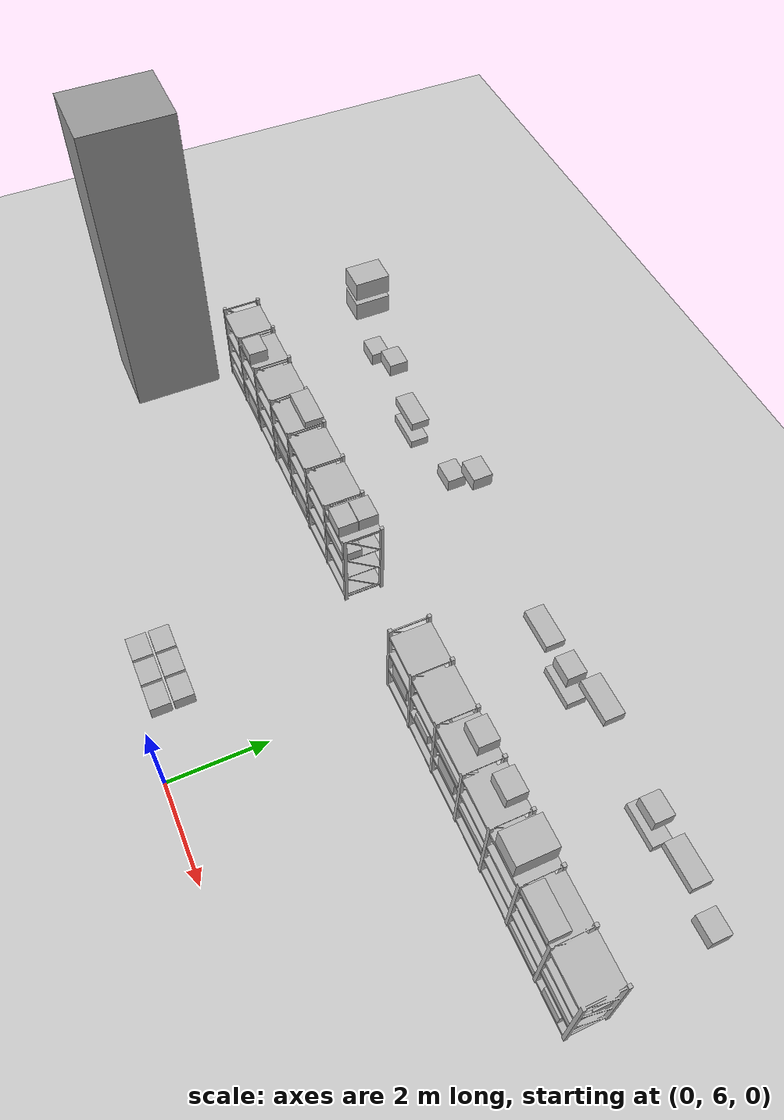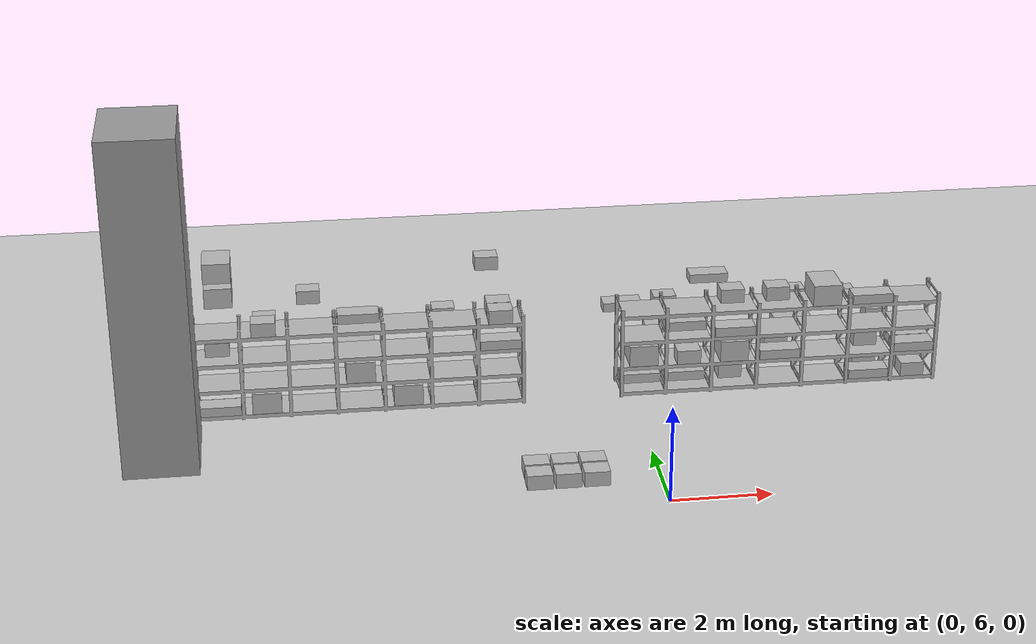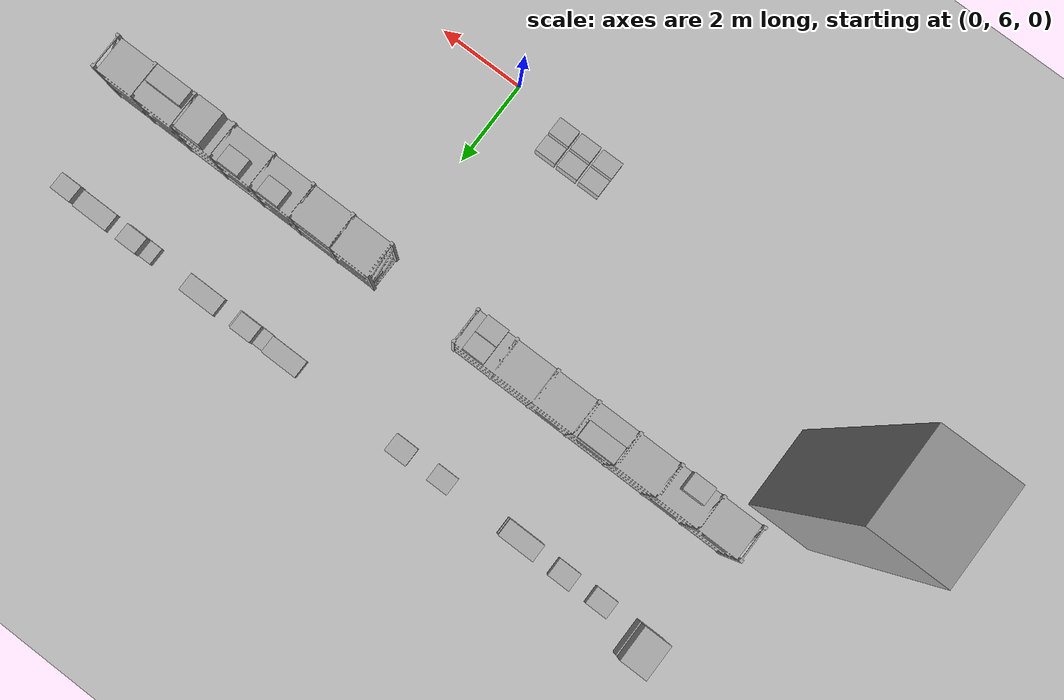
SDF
<sdf version="1.6">
 <world name="default">
  <model name="ground_plane">
   <static>1</static>
   <link name="link">
    <collision name="collision">
     <geometry><plane><normal>0 0 1</normal><size>100 100</size></plane></geometry>
     <surface><friction><ode><mu>100</mu><mu2>50</mu2></ode></friction></surface>
    </collision>
    <visual name="visual">
     <cast_shadows>0</cast_shadows>
     <geometry><plane><normal>0 0 1</normal><size>100 100</size></plane></geometry>
     <material>
      <script><uri>file://media/materials/scripts/gazebo.material</uri><name>Gazebo/Grey</name></script>
     </material>
    </visual>
   </link>
  </model>
  <model name="box_A_148">
   <pose>-2.4882 6.3711 0.4792 0 0 1.5708</pose>
   <link name="link">
    <inertial>
     <mass>2.0</mass>
     <inertia><ixx>0.05667</ixx><iyy>0.04167</iyy><izz>0.06833</izz><ixy>0</ixy><ixz>0</ixz><iyz>0</iyz></inertia>
    </inertial>
    <collision name="collision">
     <geometry><box><size>0.4 0.5 0.3</size></box></geometry>
     <surface><friction><ode><mu>1.0</mu><mu2>1.0</mu2></ode></friction></surface>
    </collision>
    <visual name="visual">
     <cast_shadows>0</cast_shadows>
     <geometry><box><size>0.4 0.5 0.3</size></box></geometry>
     <material>
      <script>
       <uri>model://labeled_boxes/materials/scripts</uri>
       <uri>model://labeled_boxes/materials/textures</uri>
       <name>LabeledBox/A-148</name>
      </script>
     </material>
    </visual>
   </link>
  </model>
  <model name="box_A_149">
   <pose>-2.4882 6.8211 0.4792 0 0 1.5708</pose>
   <link name="link">
    <inertial>
     <mass>2.0</mass>
     <inertia><ixx>0.05667</ixx><iyy>0.04167</iyy><izz>0.06833</izz><ixy>0</ixy><ixz>0</ixz><iyz>0</iyz></inertia>
    </inertial>
    <collision name="collision">
     <geometry><box><size>0.4 0.5 0.3</size></box></geometry>
     <surface><friction><ode><mu>1.0</mu><mu2>1.0</mu2></ode></friction></surface>
    </collision>
    <visual name="visual">
     <cast_shadows>0</cast_shadows>
     <geometry><box><size>0.4 0.5 0.3</size></box></geometry>
     <material>
      <script>
       <uri>model://labeled_boxes/materials/scripts</uri>
       <uri>model://labeled_boxes/materials/textures</uri>
       <name>LabeledBox/A-149</name>
      </script>
     </material>
    </visual>
   </link>
  </model>
  <model name="box_A_151">
   <pose>-1.9382 6.3711 0.4792 0 0 1.5708</pose>
   <link name="link">
    <inertial>
     <mass>2.0</mass>
     <inertia><ixx>0.05667</ixx><iyy>0.04167</iyy><izz>0.06833</izz><ixy>0</ixy><ixz>0</ixz><iyz>0</iyz></inertia>
    </inertial>
    <collision name="collision">
     <geometry><box><size>0.4 0.5 0.3</size></box></geometry>
     <surface><friction><ode><mu>1.0</mu><mu2>1.0</mu2></ode></friction></surface>
    </collision>
    <visual name="visual">
     <cast_shadows>0</cast_shadows>
     <geometry><box><size>0.4 0.5 0.3</size></box></geometry>
     <material>
      <script>
       <uri>model://labeled_boxes/materials/scripts</uri>
       <uri>model://labeled_boxes/materials/textures</uri>
       <name>LabeledBox/A-151</name>
      </script>
     </material>
    </visual>
   </link>
  </model>
  <model name="box_A_152">
   <pose>-1.9382 6.8211 0.4792 0 0 1.5708</pose>
   <link name="link">
    <inertial>
     <mass>2.0</mass>
     <inertia><ixx>0.05667</ixx><iyy>0.04167</iyy><izz>0.06833</izz><ixy>0</ixy><ixz>0</ixz><iyz>0</iyz></inertia>
    </inertial>
    <collision name="collision">
     <geometry><box><size>0.4 0.5 0.3</size></box></geometry>
     <surface><friction><ode><mu>1.0</mu><mu2>1.0</mu2></ode></friction></surface>
    </collision>
    <visual name="visual">
     <cast_shadows>0</cast_shadows>
     <geometry><box><size>0.4 0.5 0.3</size></box></geometry>
     <material>
      <script>
       <uri>model://labeled_boxes/materials/scripts</uri>
       <uri>model://labeled_boxes/materials/textures</uri>
       <name>LabeledBox/A-152</name>
      </script>
     </material>
    </visual>
   </link>
  </model>
  <model name="box_A_154">
   <pose>-1.3882 6.3711 0.4792 0 0 1.5708</pose>
   <link name="link">
    <inertial>
     <mass>2.0</mass>
     <inertia><ixx>0.05667</ixx><iyy>0.04167</iyy><izz>0.06833</izz><ixy>0</ixy><ixz>0</ixz><iyz>0</iyz></inertia>
    </inertial>
    <collision name="collision">
     <geometry><box><size>0.4 0.5 0.3</size></box></geometry>
     <surface><friction><ode><mu>1.0</mu><mu2>1.0</mu2></ode></friction></surface>
    </collision>
    <visual name="visual">
     <cast_shadows>0</cast_shadows>
     <geometry><box><size>0.4 0.5 0.3</size></box></geometry>
     <material>
      <script>
       <uri>model://labeled_boxes/materials/scripts</uri>
       <uri>model://labeled_boxes/materials/textures</uri>
       <name>LabeledBox/A-154</name>
      </script>
     </material>
    </visual>
   </link>
  </model>
  <model name="box_A_155">
   <pose>-1.3882 6.8211 0.4792 0 0 1.5708</pose>
   <link name="link">
    <inertial>
     <mass>2.0</mass>
     <inertia><ixx>0.05667</ixx><iyy>0.04167</iyy><izz>0.06833</izz><ixy>0</ixy><ixz>0</ixz><iyz>0</iyz></inertia>
    </inertial>
    <collision name="collision">
     <geometry><box><size>0.4 0.5 0.3</size></box></geometry>
     <surface><friction><ode><mu>1.0</mu><mu2>1.0</mu2></ode></friction></surface>
    </collision>
    <visual name="visual">
     <cast_shadows>0</cast_shadows>
     <geometry><box><size>0.4 0.5 0.3</size></box></geometry>
     <material>
      <script>
       <uri>model://labeled_boxes/materials/scripts</uri>
       <uri>model://labeled_boxes/materials/textures</uri>
       <name>LabeledBox/A-155</name>
      </script>
     </material>
    </visual>
   </link>
  </model>
  <model name="box_D_067">
   <pose>-8.5369 13.655 1.487 0 0 -1.5708</pose>
   <link name="link">
    <inertial>
     <mass>8.0</mass>
     <inertia><ixx>0.37500</ixx><iyy>0.54060</iyy><izz>0.64560</izz><ixy>0</ixy><ixz>0</ixz><iyz>0</iyz></inertia>
    </inertial>
    <collision name="collision">
     <geometry><box><size>0.78 0.6 0.45</size></box></geometry>
     <surface><friction><ode><mu>1.0</mu><mu2>1.0</mu2></ode></friction></surface>
    </collision>
    <visual name="visual">
     <cast_shadows>0</cast_shadows>
     <geometry><box><size>0.78 0.6 0.45</size></box></geometry>
     <material>
      <script>
       <uri>model://labeled_boxes/materials/scripts</uri>
       <uri>model://labeled_boxes/materials/textures</uri>
       <name>LabeledBox/D-067</name>
      </script>
     </material>
    </visual>
   </link>
  </model>
  <model name="box_D_068">
   <pose>-8.5369 13.655 2.067 0 0 -1.5708</pose>
   <link name="link">
    <inertial>
     <mass>8.0</mass>
     <inertia><ixx>0.37500</ixx><iyy>0.54060</iyy><izz>0.64560</izz><ixy>0</ixy><ixz>0</ixz><iyz>0</iyz></inertia>
    </inertial>
    <collision name="collision">
     <geometry><box><size>0.78 0.6 0.45</size></box></geometry>
     <surface><friction><ode><mu>1.0</mu><mu2>1.0</mu2></ode></friction></surface>
    </collision>
    <visual name="visual">
     <cast_shadows>0</cast_shadows>
     <geometry><box><size>0.78 0.6 0.45</size></box></geometry>
     <material>
      <script>
       <uri>model://labeled_boxes/materials/scripts</uri>
       <uri>model://labeled_boxes/materials/textures</uri>
       <name>LabeledBox/D-068</name>
      </script>
     </material>
    </visual>
   </link>
  </model>
  <model name="box_D_069">
   <pose>-7.583 13.45 0.832 0 0 -1.5708</pose>
   <link name="link">
    <inertial>
     <mass>2.0</mass>
     <inertia><ixx>0.05667</ixx><iyy>0.04167</iyy><izz>0.06833</izz><ixy>0</ixy><ixz>0</ixz><iyz>0</iyz></inertia>
    </inertial>
    <collision name="collision">
     <geometry><box><size>0.4 0.5 0.3</size></box></geometry>
     <surface><friction><ode><mu>1.0</mu><mu2>1.0</mu2></ode></friction></surface>
    </collision>
    <visual name="visual">
     <cast_shadows>0</cast_shadows>
     <geometry><box><size>0.4 0.5 0.3</size></box></geometry>
     <material>
      <script>
       <uri>model://labeled_boxes/materials/scripts</uri>
       <uri>model://labeled_boxes/materials/textures</uri>
       <name>LabeledBox/D-069</name>
      </script>
     </material>
    </visual>
   </link>
  </model>
  <model name="box_D_072">
   <pose>-6.6115 13.45 1.412 0 0 -1.5708</pose>
   <link name="link">
    <inertial>
     <mass>2.0</mass>
     <inertia><ixx>0.05667</ixx><iyy>0.04167</iyy><izz>0.06833</izz><ixy>0</ixy><ixz>0</ixz><iyz>0</iyz></inertia>
    </inertial>
    <collision name="collision">
     <geometry><box><size>0.4 0.5 0.3</size></box></geometry>
     <surface><friction><ode><mu>1.0</mu><mu2>1.0</mu2></ode></friction></surface>
    </collision>
    <visual name="visual">
     <cast_shadows>0</cast_shadows>
     <geometry><box><size>0.4 0.5 0.3</size></box></geometry>
     <material>
      <script>
       <uri>model://labeled_boxes/materials/scripts</uri>
       <uri>model://labeled_boxes/materials/textures</uri>
       <name>LabeledBox/D-072</name>
      </script>
     </material>
    </visual>
   </link>
  </model>
  <model name="box_D_074">
   <pose>-5.6401 13.45 0.202 0 0 -1.5708</pose>
   <link name="link">
    <inertial>
     <mass>4.0</mass>
     <inertia><ixx>0.25417</ixx><iyy>0.06667</iyy><izz>0.29417</izz><ixy>0</ixy><ixz>0</ixz><iyz>0</iyz></inertia>
    </inertial>
    <collision name="collision">
     <geometry><box><size>0.4 0.85 0.2</size></box></geometry>
     <surface><friction><ode><mu>1.0</mu><mu2>1.0</mu2></ode></friction></surface>
    </collision>
    <visual name="visual">
     <cast_shadows>0</cast_shadows>
     <geometry><box><size>0.4 0.85 0.2</size></box></geometry>
     <material>
      <script>
       <uri>model://labeled_boxes/materials/scripts</uri>
       <uri>model://labeled_boxes/materials/textures</uri>
       <name>LabeledBox/D-074</name>
      </script>
     </material>
    </visual>
   </link>
  </model>
  <model name="box_D_075">
   <pose>-5.6401 13.45 0.782 0 0 -1.5708</pose>
   <link name="link">
    <inertial>
     <mass>4.0</mass>
     <inertia><ixx>0.25417</ixx><iyy>0.06667</iyy><izz>0.29417</izz><ixy>0</ixy><ixz>0</ixz><iyz>0</iyz></inertia>
    </inertial>
    <collision name="collision">
     <geometry><box><size>0.4 0.85 0.2</size></box></geometry>
     <surface><friction><ode><mu>1.0</mu><mu2>1.0</mu2></ode></friction></surface>
    </collision>
    <visual name="visual">
     <cast_shadows>0</cast_shadows>
     <geometry><box><size>0.4 0.85 0.2</size></box></geometry>
     <material>
      <script>
       <uri>model://labeled_boxes/materials/scripts</uri>
       <uri>model://labeled_boxes/materials/textures</uri>
       <name>LabeledBox/D-075</name>
      </script>
     </material>
    </visual>
   </link>
  </model>
  <model name="box_D_080">
   <pose>-3.6972 13.45 0.832 0 0 -1.5708</pose>
   <link name="link">
    <inertial>
     <mass>2.0</mass>
     <inertia><ixx>0.05667</ixx><iyy>0.04167</iyy><izz>0.06833</izz><ixy>0</ixy><ixz>0</ixz><iyz>0</iyz></inertia>
    </inertial>
    <collision name="collision">
     <geometry><box><size>0.4 0.5 0.3</size></box></geometry>
     <surface><friction><ode><mu>1.0</mu><mu2>1.0</mu2></ode></friction></surface>
    </collision>
    <visual name="visual">
     <cast_shadows>0</cast_shadows>
     <geometry><box><size>0.4 0.5 0.3</size></box></geometry>
     <material>
      <script>
       <uri>model://labeled_boxes/materials/scripts</uri>
       <uri>model://labeled_boxes/materials/textures</uri>
       <name>LabeledBox/D-080</name>
      </script>
     </material>
    </visual>
   </link>
  </model>
  <model name="box_D_084">
   <pose>-2.7433 13.45 1.992 0 0 -1.5708</pose>
   <link name="link">
    <inertial>
     <mass>2.0</mass>
     <inertia><ixx>0.05667</ixx><iyy>0.04167</iyy><izz>0.06833</izz><ixy>0</ixy><ixz>0</ixz><iyz>0</iyz></inertia>
    </inertial>
    <collision name="collision">
     <geometry><box><size>0.4 0.5 0.3</size></box></geometry>
     <surface><friction><ode><mu>1.0</mu><mu2>1.0</mu2></ode></friction></surface>
    </collision>
    <visual name="visual">
     <cast_shadows>0</cast_shadows>
     <geometry><box><size>0.4 0.5 0.3</size></box></geometry>
     <material>
      <script>
       <uri>model://labeled_boxes/materials/scripts</uri>
       <uri>model://labeled_boxes/materials/textures</uri>
       <name>LabeledBox/D-084</name>
      </script>
     </material>
    </visual>
   </link>
  </model>
  <model name="box_D_085">
   <pose>0.2631 13.45 0.782 0 0 -1.5708</pose>
   <link name="link">
    <inertial>
     <mass>4.0</mass>
     <inertia><ixx>0.25417</ixx><iyy>0.06667</iyy><izz>0.29417</izz><ixy>0</ixy><ixz>0</ixz><iyz>0</iyz></inertia>
    </inertial>
    <collision name="collision">
     <geometry><box><size>0.4 0.85 0.2</size></box></geometry>
     <surface><friction><ode><mu>1.0</mu><mu2>1.0</mu2></ode></friction></surface>
    </collision>
    <visual name="visual">
     <cast_shadows>0</cast_shadows>
     <geometry><box><size>0.4 0.85 0.2</size></box></geometry>
     <material>
      <script>
       <uri>model://labeled_boxes/materials/scripts</uri>
       <uri>model://labeled_boxes/materials/textures</uri>
       <name>LabeledBox/D-085</name>
      </script>
     </material>
    </visual>
   </link>
  </model>
  <model name="box_D_088">
   <pose>1.217 13.45 0.202 0 0 -1.5708</pose>
   <link name="link">
    <inertial>
     <mass>4.0</mass>
     <inertia><ixx>0.25417</ixx><iyy>0.06667</iyy><izz>0.29417</izz><ixy>0</ixy><ixz>0</ixz><iyz>0</iyz></inertia>
    </inertial>
    <collision name="collision">
     <geometry><box><size>0.4 0.85 0.2</size></box></geometry>
     <surface><friction><ode><mu>1.0</mu><mu2>1.0</mu2></ode></friction></surface>
    </collision>
    <visual name="visual">
     <cast_shadows>0</cast_shadows>
     <geometry><box><size>0.4 0.85 0.2</size></box></geometry>
     <material>
      <script>
       <uri>model://labeled_boxes/materials/scripts</uri>
       <uri>model://labeled_boxes/materials/textures</uri>
       <name>LabeledBox/D-088</name>
      </script>
     </material>
    </visual>
   </link>
  </model>
  <model name="box_D_090">
   <pose>1.217 13.45 0.832 0 0 -1.5708</pose>
   <link name="link">
    <inertial>
     <mass>2.0</mass>
     <inertia><ixx>0.05667</ixx><iyy>0.04167</iyy><izz>0.06833</izz><ixy>0</ixy><ixz>0</ixz><iyz>0</iyz></inertia>
    </inertial>
    <collision name="collision">
     <geometry><box><size>0.4 0.5 0.3</size></box></geometry>
     <surface><friction><ode><mu>1.0</mu><mu2>1.0</mu2></ode></friction></surface>
    </collision>
    <visual name="visual">
     <cast_shadows>0</cast_shadows>
     <geometry><box><size>0.4 0.5 0.3</size></box></geometry>
     <material>
      <script>
       <uri>model://labeled_boxes/materials/scripts</uri>
       <uri>model://labeled_boxes/materials/textures</uri>
       <name>LabeledBox/D-090</name>
      </script>
     </material>
    </visual>
   </link>
  </model>
  <model name="box_D_093">
   <pose>2.1885 13.45 1.362 0 0 -1.5708</pose>
   <link name="link">
    <inertial>
     <mass>4.0</mass>
     <inertia><ixx>0.25417</ixx><iyy>0.06667</iyy><izz>0.29417</izz><ixy>0</ixy><ixz>0</ixz><iyz>0</iyz></inertia>
    </inertial>
    <collision name="collision">
     <geometry><box><size>0.4 0.85 0.2</size></box></geometry>
     <surface><friction><ode><mu>1.0</mu><mu2>1.0</mu2></ode></friction></surface>
    </collision>
    <visual name="visual">
     <cast_shadows>0</cast_shadows>
     <geometry><box><size>0.4 0.85 0.2</size></box></geometry>
     <material>
      <script>
       <uri>model://labeled_boxes/materials/scripts</uri>
       <uri>model://labeled_boxes/materials/textures</uri>
       <name>LabeledBox/D-093</name>
      </script>
     </material>
    </visual>
   </link>
  </model>
  <model name="box_D_096">
   <pose>4.1313 13.45 0.202 0 0 -1.5708</pose>
   <link name="link">
    <inertial>
     <mass>4.0</mass>
     <inertia><ixx>0.25417</ixx><iyy>0.06667</iyy><izz>0.29417</izz><ixy>0</ixy><ixz>0</ixz><iyz>0</iyz></inertia>
    </inertial>
    <collision name="collision">
     <geometry><box><size>0.4 0.85 0.2</size></box></geometry>
     <surface><friction><ode><mu>1.0</mu><mu2>1.0</mu2></ode></friction></surface>
    </collision>
    <visual name="visual">
     <cast_shadows>0</cast_shadows>
     <geometry><box><size>0.4 0.85 0.2</size></box></geometry>
     <material>
      <script>
       <uri>model://labeled_boxes/materials/scripts</uri>
       <uri>model://labeled_boxes/materials/textures</uri>
       <name>LabeledBox/D-096</name>
      </script>
     </material>
    </visual>
   </link>
  </model>
  <model name="box_D_097">
   <pose>4.1313 13.45 0.832 0 0 -1.5708</pose>
   <link name="link">
    <inertial>
     <mass>2.0</mass>
     <inertia><ixx>0.05667</ixx><iyy>0.04167</iyy><izz>0.06833</izz><ixy>0</ixy><ixz>0</ixz><iyz>0</iyz></inertia>
    </inertial>
    <collision name="collision">
     <geometry><box><size>0.4 0.5 0.3</size></box></geometry>
     <surface><friction><ode><mu>1.0</mu><mu2>1.0</mu2></ode></friction></surface>
    </collision>
    <visual name="visual">
     <cast_shadows>0</cast_shadows>
     <geometry><box><size>0.4 0.5 0.3</size></box></geometry>
     <material>
      <script>
       <uri>model://labeled_boxes/materials/scripts</uri>
       <uri>model://labeled_boxes/materials/textures</uri>
       <name>LabeledBox/D-097</name>
      </script>
     </material>
    </visual>
   </link>
  </model>
  <model name="box_D_099">
   <pose>5.1028 13.45 0.782 0 0 -1.5708</pose>
   <link name="link">
    <inertial>
     <mass>4.0</mass>
     <inertia><ixx>0.25417</ixx><iyy>0.06667</iyy><izz>0.29417</izz><ixy>0</ixy><ixz>0</ixz><iyz>0</iyz></inertia>
    </inertial>
    <collision name="collision">
     <geometry><box><size>0.4 0.85 0.2</size></box></geometry>
     <surface><friction><ode><mu>1.0</mu><mu2>1.0</mu2></ode></friction></surface>
    </collision>
    <visual name="visual">
     <cast_shadows>0</cast_shadows>
     <geometry><box><size>0.4 0.85 0.2</size></box></geometry>
     <material>
      <script>
       <uri>model://labeled_boxes/materials/scripts</uri>
       <uri>model://labeled_boxes/materials/textures</uri>
       <name>LabeledBox/D-099</name>
      </script>
     </material>
    </visual>
   </link>
  </model>
  <model name="box_D_100">
   <pose>6.0567 13.45 0.252 0 0 -1.5708</pose>
   <link name="link">
    <inertial>
     <mass>2.0</mass>
     <inertia><ixx>0.05667</ixx><iyy>0.04167</iyy><izz>0.06833</izz><ixy>0</ixy><ixz>0</ixz><iyz>0</iyz></inertia>
    </inertial>
    <collision name="collision">
     <geometry><box><size>0.4 0.5 0.3</size></box></geometry>
     <surface><friction><ode><mu>1.0</mu><mu2>1.0</mu2></ode></friction></surface>
    </collision>
    <visual name="visual">
     <cast_shadows>0</cast_shadows>
     <geometry><box><size>0.4 0.5 0.3</size></box></geometry>
     <material>
      <script>
       <uri>model://labeled_boxes/materials/scripts</uri>
       <uri>model://labeled_boxes/materials/textures</uri>
       <name>LabeledBox/D-100</name>
      </script>
     </material>
    </visual>
   </link>
  </model>
  <include>
   <name>rack_D5_0</name>
   <uri>model://warehouse_rack_4lvl_7bay</uri>
   <pose>-5.6401 10.855 0 0 0 -1.5708</pose>
  </include>
  <model name="box_D_101">
   <pose>-8.5369 10.65 0.202 0 0 -1.5708</pose>
   <link name="link">
    <inertial>
     <mass>4.0</mass>
     <inertia><ixx>0.25417</ixx><iyy>0.06667</iyy><izz>0.29417</izz><ixy>0</ixy><ixz>0</ixz><iyz>0</iyz></inertia>
    </inertial>
    <collision name="collision">
     <geometry><box><size>0.4 0.85 0.2</size></box></geometry>
     <surface><friction><ode><mu>1.0</mu><mu2>1.0</mu2></ode></friction></surface>
    </collision>
    <visual name="visual">
     <cast_shadows>0</cast_shadows>
     <geometry><box><size>0.4 0.85 0.2</size></box></geometry>
     <material>
      <script>
       <uri>model://labeled_boxes/materials/scripts</uri>
       <uri>model://labeled_boxes/materials/textures</uri>
       <name>LabeledBox/D-101</name>
      </script>
     </material>
    </visual>
   </link>
  </model>
  <model name="box_D_102">
   <pose>-8.5369 11.06 1.412 0 0 -1.5708</pose>
   <link name="link">
    <inertial>
     <mass>2.0</mass>
     <inertia><ixx>0.05667</ixx><iyy>0.04167</iyy><izz>0.06833</izz><ixy>0</ixy><ixz>0</ixz><iyz>0</iyz></inertia>
    </inertial>
    <collision name="collision">
     <geometry><box><size>0.4 0.5 0.3</size></box></geometry>
     <surface><friction><ode><mu>1.0</mu><mu2>1.0</mu2></ode></friction></surface>
    </collision>
    <visual name="visual">
     <cast_shadows>0</cast_shadows>
     <geometry><box><size>0.4 0.5 0.3</size></box></geometry>
     <material>
      <script>
       <uri>model://labeled_boxes/materials/scripts</uri>
       <uri>model://labeled_boxes/materials/textures</uri>
       <name>LabeledBox/D-102</name>
      </script>
     </material>
    </visual>
   </link>
  </model>
  <model name="box_D_103">
   <pose>-7.583 10.855 0.327 0 0 -1.5708</pose>
   <link name="link">
    <inertial>
     <mass>8.0</mass>
     <inertia><ixx>0.37500</ixx><iyy>0.54060</iyy><izz>0.64560</izz><ixy>0</ixy><ixz>0</ixz><iyz>0</iyz></inertia>
    </inertial>
    <collision name="collision">
     <geometry><box><size>0.78 0.6 0.45</size></box></geometry>
     <surface><friction><ode><mu>1.0</mu><mu2>1.0</mu2></ode></friction></surface>
    </collision>
    <visual name="visual">
     <cast_shadows>0</cast_shadows>
     <geometry><box><size>0.78 0.6 0.45</size></box></geometry>
     <material>
      <script>
       <uri>model://labeled_boxes/materials/scripts</uri>
       <uri>model://labeled_boxes/materials/textures</uri>
       <name>LabeledBox/D-103</name>
      </script>
     </material>
    </visual>
   </link>
  </model>
  <model name="box_D_104">
   <pose>-7.583 10.65 1.992 0 0 -1.5708</pose>
   <link name="link">
    <inertial>
     <mass>2.0</mass>
     <inertia><ixx>0.05667</ixx><iyy>0.04167</iyy><izz>0.06833</izz><ixy>0</ixy><ixz>0</ixz><iyz>0</iyz></inertia>
    </inertial>
    <collision name="collision">
     <geometry><box><size>0.4 0.5 0.3</size></box></geometry>
     <surface><friction><ode><mu>1.0</mu><mu2>1.0</mu2></ode></friction></surface>
    </collision>
    <visual name="visual">
     <cast_shadows>0</cast_shadows>
     <geometry><box><size>0.4 0.5 0.3</size></box></geometry>
     <material>
      <script>
       <uri>model://labeled_boxes/materials/scripts</uri>
       <uri>model://labeled_boxes/materials/textures</uri>
       <name>LabeledBox/D-104</name>
      </script>
     </material>
    </visual>
   </link>
  </model>
  <model name="box_D_105">
   <pose>-5.6401 10.855 0.907 0 0 -1.5708</pose>
   <link name="link">
    <inertial>
     <mass>8.0</mass>
     <inertia><ixx>0.37500</ixx><iyy>0.54060</iyy><izz>0.64560</izz><ixy>0</ixy><ixz>0</ixz><iyz>0</iyz></inertia>
    </inertial>
    <collision name="collision">
     <geometry><box><size>0.78 0.6 0.45</size></box></geometry>
     <surface><friction><ode><mu>1.0</mu><mu2>1.0</mu2></ode></friction></surface>
    </collision>
    <visual name="visual">
     <cast_shadows>0</cast_shadows>
     <geometry><box><size>0.78 0.6 0.45</size></box></geometry>
     <material>
      <script>
       <uri>model://labeled_boxes/materials/scripts</uri>
       <uri>model://labeled_boxes/materials/textures</uri>
       <name>LabeledBox/D-105</name>
      </script>
     </material>
    </visual>
   </link>
  </model>
  <model name="box_D_106">
   <pose>-5.6401 11.06 1.942 0 0 -1.5708</pose>
   <link name="link">
    <inertial>
     <mass>4.0</mass>
     <inertia><ixx>0.25417</ixx><iyy>0.06667</iyy><izz>0.29417</izz><ixy>0</ixy><ixz>0</ixz><iyz>0</iyz></inertia>
    </inertial>
    <collision name="collision">
     <geometry><box><size>0.4 0.85 0.2</size></box></geometry>
     <surface><friction><ode><mu>1.0</mu><mu2>1.0</mu2></ode></friction></surface>
    </collision>
    <visual name="visual">
     <cast_shadows>0</cast_shadows>
     <geometry><box><size>0.4 0.85 0.2</size></box></geometry>
     <material>
      <script>
       <uri>model://labeled_boxes/materials/scripts</uri>
       <uri>model://labeled_boxes/materials/textures</uri>
       <name>LabeledBox/D-106</name>
      </script>
     </material>
    </visual>
   </link>
  </model>
  <model name="box_D_107">
   <pose>-4.6687 10.855 0.327 0 0 -1.5708</pose>
   <link name="link">
    <inertial>
     <mass>8.0</mass>
     <inertia><ixx>0.37500</ixx><iyy>0.54060</iyy><izz>0.64560</izz><ixy>0</ixy><ixz>0</ixz><iyz>0</iyz></inertia>
    </inertial>
    <collision name="collision">
     <geometry><box><size>0.78 0.6 0.45</size></box></geometry>
     <surface><friction><ode><mu>1.0</mu><mu2>1.0</mu2></ode></friction></surface>
    </collision>
    <visual name="visual">
     <cast_shadows>0</cast_shadows>
     <geometry><box><size>0.78 0.6 0.45</size></box></geometry>
     <material>
      <script>
       <uri>model://labeled_boxes/materials/scripts</uri>
       <uri>model://labeled_boxes/materials/textures</uri>
       <name>LabeledBox/D-107</name>
      </script>
     </material>
    </visual>
   </link>
  </model>
  <model name="box_D_108">
   <pose>-2.7433 10.65 1.362 0 0 -1.5708</pose>
   <link name="link">
    <inertial>
     <mass>4.0</mass>
     <inertia><ixx>0.25417</ixx><iyy>0.06667</iyy><izz>0.29417</izz><ixy>0</ixy><ixz>0</ixz><iyz>0</iyz></inertia>
    </inertial>
    <collision name="collision">
     <geometry><box><size>0.4 0.85 0.2</size></box></geometry>
     <surface><friction><ode><mu>1.0</mu><mu2>1.0</mu2></ode></friction></surface>
    </collision>
    <visual name="visual">
     <cast_shadows>0</cast_shadows>
     <geometry><box><size>0.4 0.85 0.2</size></box></geometry>
     <material>
      <script>
       <uri>model://labeled_boxes/materials/scripts</uri>
       <uri>model://labeled_boxes/materials/textures</uri>
       <name>LabeledBox/D-108</name>
      </script>
     </material>
    </visual>
   </link>
  </model>
  <model name="box_D_109">
   <pose>-2.7433 11.06 1.992 0 0 -1.5708</pose>
   <link name="link">
    <inertial>
     <mass>2.0</mass>
     <inertia><ixx>0.05667</ixx><iyy>0.04167</iyy><izz>0.06833</izz><ixy>0</ixy><ixz>0</ixz><iyz>0</iyz></inertia>
    </inertial>
    <collision name="collision">
     <geometry><box><size>0.4 0.5 0.3</size></box></geometry>
     <surface><friction><ode><mu>1.0</mu><mu2>1.0</mu2></ode></friction></surface>
    </collision>
    <visual name="visual">
     <cast_shadows>0</cast_shadows>
     <geometry><box><size>0.4 0.5 0.3</size></box></geometry>
     <material>
      <script>
       <uri>model://labeled_boxes/materials/scripts</uri>
       <uri>model://labeled_boxes/materials/textures</uri>
       <name>LabeledBox/D-109</name>
      </script>
     </material>
    </visual>
   </link>
  </model>
  <model name="box_D_110">
   <pose>-2.7433 10.65 1.992 0 0 -1.5708</pose>
   <link name="link">
    <inertial>
     <mass>2.0</mass>
     <inertia><ixx>0.05667</ixx><iyy>0.04167</iyy><izz>0.06833</izz><ixy>0</ixy><ixz>0</ixz><iyz>0</iyz></inertia>
    </inertial>
    <collision name="collision">
     <geometry><box><size>0.4 0.5 0.3</size></box></geometry>
     <surface><friction><ode><mu>1.0</mu><mu2>1.0</mu2></ode></friction></surface>
    </collision>
    <visual name="visual">
     <cast_shadows>0</cast_shadows>
     <geometry><box><size>0.4 0.5 0.3</size></box></geometry>
     <material>
      <script>
       <uri>model://labeled_boxes/materials/scripts</uri>
       <uri>model://labeled_boxes/materials/textures</uri>
       <name>LabeledBox/D-110</name>
      </script>
     </material>
    </visual>
   </link>
  </model>
  <include>
   <name>rack_D5_1</name>
   <uri>model://warehouse_rack_4lvl_7bay</uri>
   <pose>3.1599 10.855 0 0 0 -1.5708</pose>
  </include>
  <model name="box_D_111">
   <pose>0.2631 11.06 0.202 0 0 -1.5708</pose>
   <link name="link">
    <inertial>
     <mass>4.0</mass>
     <inertia><ixx>0.25417</ixx><iyy>0.06667</iyy><izz>0.29417</izz><ixy>0</ixy><ixz>0</ixz><iyz>0</iyz></inertia>
    </inertial>
    <collision name="collision">
     <geometry><box><size>0.4 0.85 0.2</size></box></geometry>
     <surface><friction><ode><mu>1.0</mu><mu2>1.0</mu2></ode></friction></surface>
    </collision>
    <visual name="visual">
     <cast_shadows>0</cast_shadows>
     <geometry><box><size>0.4 0.85 0.2</size></box></geometry>
     <material>
      <script>
       <uri>model://labeled_boxes/materials/scripts</uri>
       <uri>model://labeled_boxes/materials/textures</uri>
       <name>LabeledBox/D-111</name>
      </script>
     </material>
    </visual>
   </link>
  </model>
  <model name="box_D_112">
   <pose>0.2631 10.855 0.907 0 0 -1.5708</pose>
   <link name="link">
    <inertial>
     <mass>8.0</mass>
     <inertia><ixx>0.37500</ixx><iyy>0.54060</iyy><izz>0.64560</izz><ixy>0</ixy><ixz>0</ixz><iyz>0</iyz></inertia>
    </inertial>
    <collision name="collision">
     <geometry><box><size>0.78 0.6 0.45</size></box></geometry>
     <surface><friction><ode><mu>1.0</mu><mu2>1.0</mu2></ode></friction></surface>
    </collision>
    <visual name="visual">
     <cast_shadows>0</cast_shadows>
     <geometry><box><size>0.78 0.6 0.45</size></box></geometry>
     <material>
      <script>
       <uri>model://labeled_boxes/materials/scripts</uri>
       <uri>model://labeled_boxes/materials/textures</uri>
       <name>LabeledBox/D-112</name>
      </script>
     </material>
    </visual>
   </link>
  </model>
  <model name="box_D_113">
   <pose>1.217 11.06 0.202 0 0 -1.5708</pose>
   <link name="link">
    <inertial>
     <mass>4.0</mass>
     <inertia><ixx>0.25417</ixx><iyy>0.06667</iyy><izz>0.29417</izz><ixy>0</ixy><ixz>0</ixz><iyz>0</iyz></inertia>
    </inertial>
    <collision name="collision">
     <geometry><box><size>0.4 0.85 0.2</size></box></geometry>
     <surface><friction><ode><mu>1.0</mu><mu2>1.0</mu2></ode></friction></surface>
    </collision>
    <visual name="visual">
     <cast_shadows>0</cast_shadows>
     <geometry><box><size>0.4 0.85 0.2</size></box></geometry>
     <material>
      <script>
       <uri>model://labeled_boxes/materials/scripts</uri>
       <uri>model://labeled_boxes/materials/textures</uri>
       <name>LabeledBox/D-113</name>
      </script>
     </material>
    </visual>
   </link>
  </model>
  <model name="box_D_114">
   <pose>1.217 10.65 0.832 0 0 -1.5708</pose>
   <link name="link">
    <inertial>
     <mass>2.0</mass>
     <inertia><ixx>0.05667</ixx><iyy>0.04167</iyy><izz>0.06833</izz><ixy>0</ixy><ixz>0</ixz><iyz>0</iyz></inertia>
    </inertial>
    <collision name="collision">
     <geometry><box><size>0.4 0.5 0.3</size></box></geometry>
     <surface><friction><ode><mu>1.0</mu><mu2>1.0</mu2></ode></friction></surface>
    </collision>
    <visual name="visual">
     <cast_shadows>0</cast_shadows>
     <geometry><box><size>0.4 0.5 0.3</size></box></geometry>
     <material>
      <script>
       <uri>model://labeled_boxes/materials/scripts</uri>
       <uri>model://labeled_boxes/materials/textures</uri>
       <name>LabeledBox/D-114</name>
      </script>
     </material>
    </visual>
   </link>
  </model>
  <model name="box_D_115">
   <pose>1.217 11.06 1.362 0 0 -1.5708</pose>
   <link name="link">
    <inertial>
     <mass>4.0</mass>
     <inertia><ixx>0.25417</ixx><iyy>0.06667</iyy><izz>0.29417</izz><ixy>0</ixy><ixz>0</ixz><iyz>0</iyz></inertia>
    </inertial>
    <collision name="collision">
     <geometry><box><size>0.4 0.85 0.2</size></box></geometry>
     <surface><friction><ode><mu>1.0</mu><mu2>1.0</mu2></ode></friction></surface>
    </collision>
    <visual name="visual">
     <cast_shadows>0</cast_shadows>
     <geometry><box><size>0.4 0.85 0.2</size></box></geometry>
     <material>
      <script>
       <uri>model://labeled_boxes/materials/scripts</uri>
       <uri>model://labeled_boxes/materials/textures</uri>
       <name>LabeledBox/D-115</name>
      </script>
     </material>
    </visual>
   </link>
  </model>
  <model name="box_D_116">
   <pose>2.1885 11.06 0.252 0 0 -1.5708</pose>
   <link name="link">
    <inertial>
     <mass>2.0</mass>
     <inertia><ixx>0.05667</ixx><iyy>0.04167</iyy><izz>0.06833</izz><ixy>0</ixy><ixz>0</ixz><iyz>0</iyz></inertia>
    </inertial>
    <collision name="collision">
     <geometry><box><size>0.4 0.5 0.3</size></box></geometry>
     <surface><friction><ode><mu>1.0</mu><mu2>1.0</mu2></ode></friction></surface>
    </collision>
    <visual name="visual">
     <cast_shadows>0</cast_shadows>
     <geometry><box><size>0.4 0.5 0.3</size></box></geometry>
     <material>
      <script>
       <uri>model://labeled_boxes/materials/scripts</uri>
       <uri>model://labeled_boxes/materials/textures</uri>
       <name>LabeledBox/D-116</name>
      </script>
     </material>
    </visual>
   </link>
  </model>
  <model name="box_D_117">
   <pose>2.1885 10.855 0.907 0 0 -1.5708</pose>
   <link name="link">
    <inertial>
     <mass>8.0</mass>
     <inertia><ixx>0.37500</ixx><iyy>0.54060</iyy><izz>0.64560</izz><ixy>0</ixy><ixz>0</ixz><iyz>0</iyz></inertia>
    </inertial>
    <collision name="collision">
     <geometry><box><size>0.78 0.6 0.45</size></box></geometry>
     <surface><friction><ode><mu>1.0</mu><mu2>1.0</mu2></ode></friction></surface>
    </collision>
    <visual name="visual">
     <cast_shadows>0</cast_shadows>
     <geometry><box><size>0.78 0.6 0.45</size></box></geometry>
     <material>
      <script>
       <uri>model://labeled_boxes/materials/scripts</uri>
       <uri>model://labeled_boxes/materials/textures</uri>
       <name>LabeledBox/D-117</name>
      </script>
     </material>
    </visual>
   </link>
  </model>
  <model name="box_D_118">
   <pose>2.1885 10.65 1.362 0 0 -1.5708</pose>
   <link name="link">
    <inertial>
     <mass>4.0</mass>
     <inertia><ixx>0.25417</ixx><iyy>0.06667</iyy><izz>0.29417</izz><ixy>0</ixy><ixz>0</ixz><iyz>0</iyz></inertia>
    </inertial>
    <collision name="collision">
     <geometry><box><size>0.4 0.85 0.2</size></box></geometry>
     <surface><friction><ode><mu>1.0</mu><mu2>1.0</mu2></ode></friction></surface>
    </collision>
    <visual name="visual">
     <cast_shadows>0</cast_shadows>
     <geometry><box><size>0.4 0.85 0.2</size></box></geometry>
     <material>
      <script>
       <uri>model://labeled_boxes/materials/scripts</uri>
       <uri>model://labeled_boxes/materials/textures</uri>
       <name>LabeledBox/D-118</name>
      </script>
     </material>
    </visual>
   </link>
  </model>
  <model name="box_D_119">
   <pose>2.1885 11.06 1.992 0 0 -1.5708</pose>
   <link name="link">
    <inertial>
     <mass>2.0</mass>
     <inertia><ixx>0.05667</ixx><iyy>0.04167</iyy><izz>0.06833</izz><ixy>0</ixy><ixz>0</ixz><iyz>0</iyz></inertia>
    </inertial>
    <collision name="collision">
     <geometry><box><size>0.4 0.5 0.3</size></box></geometry>
     <surface><friction><ode><mu>1.0</mu><mu2>1.0</mu2></ode></friction></surface>
    </collision>
    <visual name="visual">
     <cast_shadows>0</cast_shadows>
     <geometry><box><size>0.4 0.5 0.3</size></box></geometry>
     <material>
      <script>
       <uri>model://labeled_boxes/materials/scripts</uri>
       <uri>model://labeled_boxes/materials/textures</uri>
       <name>LabeledBox/D-119</name>
      </script>
     </material>
    </visual>
   </link>
  </model>
  <model name="box_D_120">
   <pose>3.1599 11.06 0.832 0 0 -1.5708</pose>
   <link name="link">
    <inertial>
     <mass>2.0</mass>
     <inertia><ixx>0.05667</ixx><iyy>0.04167</iyy><izz>0.06833</izz><ixy>0</ixy><ixz>0</ixz><iyz>0</iyz></inertia>
    </inertial>
    <collision name="collision">
     <geometry><box><size>0.4 0.5 0.3</size></box></geometry>
     <surface><friction><ode><mu>1.0</mu><mu2>1.0</mu2></ode></friction></surface>
    </collision>
    <visual name="visual">
     <cast_shadows>0</cast_shadows>
     <geometry><box><size>0.4 0.5 0.3</size></box></geometry>
     <material>
      <script>
       <uri>model://labeled_boxes/materials/scripts</uri>
       <uri>model://labeled_boxes/materials/textures</uri>
       <name>LabeledBox/D-120</name>
      </script>
     </material>
    </visual>
   </link>
  </model>
  <model name="box_D_121">
   <pose>3.1599 10.65 0.782 0 0 -1.5708</pose>
   <link name="link">
    <inertial>
     <mass>4.0</mass>
     <inertia><ixx>0.25417</ixx><iyy>0.06667</iyy><izz>0.29417</izz><ixy>0</ixy><ixz>0</ixz><iyz>0</iyz></inertia>
    </inertial>
    <collision name="collision">
     <geometry><box><size>0.4 0.85 0.2</size></box></geometry>
     <surface><friction><ode><mu>1.0</mu><mu2>1.0</mu2></ode></friction></surface>
    </collision>
    <visual name="visual">
     <cast_shadows>0</cast_shadows>
     <geometry><box><size>0.4 0.85 0.2</size></box></geometry>
     <material>
      <script>
       <uri>model://labeled_boxes/materials/scripts</uri>
       <uri>model://labeled_boxes/materials/textures</uri>
       <name>LabeledBox/D-121</name>
      </script>
     </material>
    </visual>
   </link>
  </model>
  <model name="box_D_122">
   <pose>3.1599 11.06 1.992 0 0 -1.5708</pose>
   <link name="link">
    <inertial>
     <mass>2.0</mass>
     <inertia><ixx>0.05667</ixx><iyy>0.04167</iyy><izz>0.06833</izz><ixy>0</ixy><ixz>0</ixz><iyz>0</iyz></inertia>
    </inertial>
    <collision name="collision">
     <geometry><box><size>0.4 0.5 0.3</size></box></geometry>
     <surface><friction><ode><mu>1.0</mu><mu2>1.0</mu2></ode></friction></surface>
    </collision>
    <visual name="visual">
     <cast_shadows>0</cast_shadows>
     <geometry><box><size>0.4 0.5 0.3</size></box></geometry>
     <material>
      <script>
       <uri>model://labeled_boxes/materials/scripts</uri>
       <uri>model://labeled_boxes/materials/textures</uri>
       <name>LabeledBox/D-122</name>
      </script>
     </material>
    </visual>
   </link>
  </model>
  <model name="box_D_123">
   <pose>4.1313 10.855 2.067 0 0 -1.5708</pose>
   <link name="link">
    <inertial>
     <mass>8.0</mass>
     <inertia><ixx>0.37500</ixx><iyy>0.54060</iyy><izz>0.64560</izz><ixy>0</ixy><ixz>0</ixz><iyz>0</iyz></inertia>
    </inertial>
    <collision name="collision">
     <geometry><box><size>0.78 0.6 0.45</size></box></geometry>
     <surface><friction><ode><mu>1.0</mu><mu2>1.0</mu2></ode></friction></surface>
    </collision>
    <visual name="visual">
     <cast_shadows>0</cast_shadows>
     <geometry><box><size>0.78 0.6 0.45</size></box></geometry>
     <material>
      <script>
       <uri>model://labeled_boxes/materials/scripts</uri>
       <uri>model://labeled_boxes/materials/textures</uri>
       <name>LabeledBox/D-123</name>
      </script>
     </material>
    </visual>
   </link>
  </model>
  <model name="box_D_124">
   <pose>5.1028 11.06 0.252 0 0 -1.5708</pose>
   <link name="link">
    <inertial>
     <mass>2.0</mass>
     <inertia><ixx>0.05667</ixx><iyy>0.04167</iyy><izz>0.06833</izz><ixy>0</ixy><ixz>0</ixz><iyz>0</iyz></inertia>
    </inertial>
    <collision name="collision">
     <geometry><box><size>0.4 0.5 0.3</size></box></geometry>
     <surface><friction><ode><mu>1.0</mu><mu2>1.0</mu2></ode></friction></surface>
    </collision>
    <visual name="visual">
     <cast_shadows>0</cast_shadows>
     <geometry><box><size>0.4 0.5 0.3</size></box></geometry>
     <material>
      <script>
       <uri>model://labeled_boxes/materials/scripts</uri>
       <uri>model://labeled_boxes/materials/textures</uri>
       <name>LabeledBox/D-124</name>
      </script>
     </material>
    </visual>
   </link>
  </model>
  <model name="box_D_125">
   <pose>5.1028 10.65 0.202 0 0 -1.5708</pose>
   <link name="link">
    <inertial>
     <mass>4.0</mass>
     <inertia><ixx>0.25417</ixx><iyy>0.06667</iyy><izz>0.29417</izz><ixy>0</ixy><ixz>0</ixz><iyz>0</iyz></inertia>
    </inertial>
    <collision name="collision">
     <geometry><box><size>0.4 0.85 0.2</size></box></geometry>
     <surface><friction><ode><mu>1.0</mu><mu2>1.0</mu2></ode></friction></surface>
    </collision>
    <visual name="visual">
     <cast_shadows>0</cast_shadows>
     <geometry><box><size>0.4 0.85 0.2</size></box></geometry>
     <material>
      <script>
       <uri>model://labeled_boxes/materials/scripts</uri>
       <uri>model://labeled_boxes/materials/textures</uri>
       <name>LabeledBox/D-125</name>
      </script>
     </material>
    </visual>
   </link>
  </model>
  <model name="box_D_126">
   <pose>5.1028 11.06 0.832 0 0 -1.5708</pose>
   <link name="link">
    <inertial>
     <mass>2.0</mass>
     <inertia><ixx>0.05667</ixx><iyy>0.04167</iyy><izz>0.06833</izz><ixy>0</ixy><ixz>0</ixz><iyz>0</iyz></inertia>
    </inertial>
    <collision name="collision">
     <geometry><box><size>0.4 0.5 0.3</size></box></geometry>
     <surface><friction><ode><mu>1.0</mu><mu2>1.0</mu2></ode></friction></surface>
    </collision>
    <visual name="visual">
     <cast_shadows>0</cast_shadows>
     <geometry><box><size>0.4 0.5 0.3</size></box></geometry>
     <material>
      <script>
       <uri>model://labeled_boxes/materials/scripts</uri>
       <uri>model://labeled_boxes/materials/textures</uri>
       <name>LabeledBox/D-126</name>
      </script>
     </material>
    </visual>
   </link>
  </model>
  <model name="box_D_127">
   <pose>5.1028 10.65 1.942 0 0 -1.5708</pose>
   <link name="link">
    <inertial>
     <mass>4.0</mass>
     <inertia><ixx>0.25417</ixx><iyy>0.06667</iyy><izz>0.29417</izz><ixy>0</ixy><ixz>0</ixz><iyz>0</iyz></inertia>
    </inertial>
    <collision name="collision">
     <geometry><box><size>0.4 0.85 0.2</size></box></geometry>
     <surface><friction><ode><mu>1.0</mu><mu2>1.0</mu2></ode></friction></surface>
    </collision>
    <visual name="visual">
     <cast_shadows>0</cast_shadows>
     <geometry><box><size>0.4 0.85 0.2</size></box></geometry>
     <material>
      <script>
       <uri>model://labeled_boxes/materials/scripts</uri>
       <uri>model://labeled_boxes/materials/textures</uri>
       <name>LabeledBox/D-127</name>
      </script>
     </material>
    </visual>
   </link>
  </model>
  <model name="box_D_128">
   <pose>6.0567 11.06 0.252 0 0 -1.5708</pose>
   <link name="link">
    <inertial>
     <mass>2.0</mass>
     <inertia><ixx>0.05667</ixx><iyy>0.04167</iyy><izz>0.06833</izz><ixy>0</ixy><ixz>0</ixz><iyz>0</iyz></inertia>
    </inertial>
    <collision name="collision">
     <geometry><box><size>0.4 0.5 0.3</size></box></geometry>
     <surface><friction><ode><mu>1.0</mu><mu2>1.0</mu2></ode></friction></surface>
    </collision>
    <visual name="visual">
     <cast_shadows>0</cast_shadows>
     <geometry><box><size>0.4 0.5 0.3</size></box></geometry>
     <material>
      <script>
       <uri>model://labeled_boxes/materials/scripts</uri>
       <uri>model://labeled_boxes/materials/textures</uri>
       <name>LabeledBox/D-128</name>
      </script>
     </material>
    </visual>
   </link>
  </model>
  <model name="box_D_129">
   <pose>6.0567 10.65 0.252 0 0 -1.5708</pose>
   <link name="link">
    <inertial>
     <mass>2.0</mass>
     <inertia><ixx>0.05667</ixx><iyy>0.04167</iyy><izz>0.06833</izz><ixy>0</ixy><ixz>0</ixz><iyz>0</iyz></inertia>
    </inertial>
    <collision name="collision">
     <geometry><box><size>0.4 0.5 0.3</size></box></geometry>
     <surface><friction><ode><mu>1.0</mu><mu2>1.0</mu2></ode></friction></surface>
    </collision>
    <visual name="visual">
     <cast_shadows>0</cast_shadows>
     <geometry><box><size>0.4 0.5 0.3</size></box></geometry>
     <material>
      <script>
       <uri>model://labeled_boxes/materials/scripts</uri>
       <uri>model://labeled_boxes/materials/textures</uri>
       <name>LabeledBox/D-129</name>
      </script>
     </material>
    </visual>
   </link>
  </model>
  <model name="box_D_130">
   <pose>6.0567 11.06 0.782 0 0 -1.5708</pose>
   <link name="link">
    <inertial>
     <mass>4.0</mass>
     <inertia><ixx>0.25417</ixx><iyy>0.06667</iyy><izz>0.29417</izz><ixy>0</ixy><ixz>0</ixz><iyz>0</iyz></inertia>
    </inertial>
    <collision name="collision">
     <geometry><box><size>0.4 0.85 0.2</size></box></geometry>
     <surface><friction><ode><mu>1.0</mu><mu2>1.0</mu2></ode></friction></surface>
    </collision>
    <visual name="visual">
     <cast_shadows>0</cast_shadows>
     <geometry><box><size>0.4 0.85 0.2</size></box></geometry>
     <material>
      <script>
       <uri>model://labeled_boxes/materials/scripts</uri>
       <uri>model://labeled_boxes/materials/textures</uri>
       <name>LabeledBox/D-130</name>
      </script>
     </material>
    </visual>
   </link>
  </model>
  <model name="box_D_131">
   <pose>6.0567 10.65 0.782 0 0 -1.5708</pose>
   <link name="link">
    <inertial>
     <mass>4.0</mass>
     <inertia><ixx>0.25417</ixx><iyy>0.06667</iyy><izz>0.29417</izz><ixy>0</ixy><ixz>0</ixz><iyz>0</iyz></inertia>
    </inertial>
    <collision name="collision">
     <geometry><box><size>0.4 0.85 0.2</size></box></geometry>
     <surface><friction><ode><mu>1.0</mu><mu2>1.0</mu2></ode></friction></surface>
    </collision>
    <visual name="visual">
     <cast_shadows>0</cast_shadows>
     <geometry><box><size>0.4 0.85 0.2</size></box></geometry>
     <material>
      <script>
       <uri>model://labeled_boxes/materials/scripts</uri>
       <uri>model://labeled_boxes/materials/textures</uri>
       <name>LabeledBox/D-131</name>
      </script>
     </material>
    </visual>
   </link>
  </model>
  <model name="wall_filler_0">
   <static>1</static>
   <pose>-9.68011 9.14529 3.48855 0 0 0</pose>
   <link name="link">
    <collision name="collision"><geometry><box><size>1.5 1.9 6.97771</size></box></geometry></collision>
    <visual name="visual">
     <geometry><box><size>1.5 1.9 6.97771</size></box></geometry>
     <material>
      <script><uri>file://media/materials/scripts/gazebo.material</uri><name>Gazebo/Grey</name></script>
     </material>
    </visual>
   </link>
  </model>
 </world>
</sdf>
